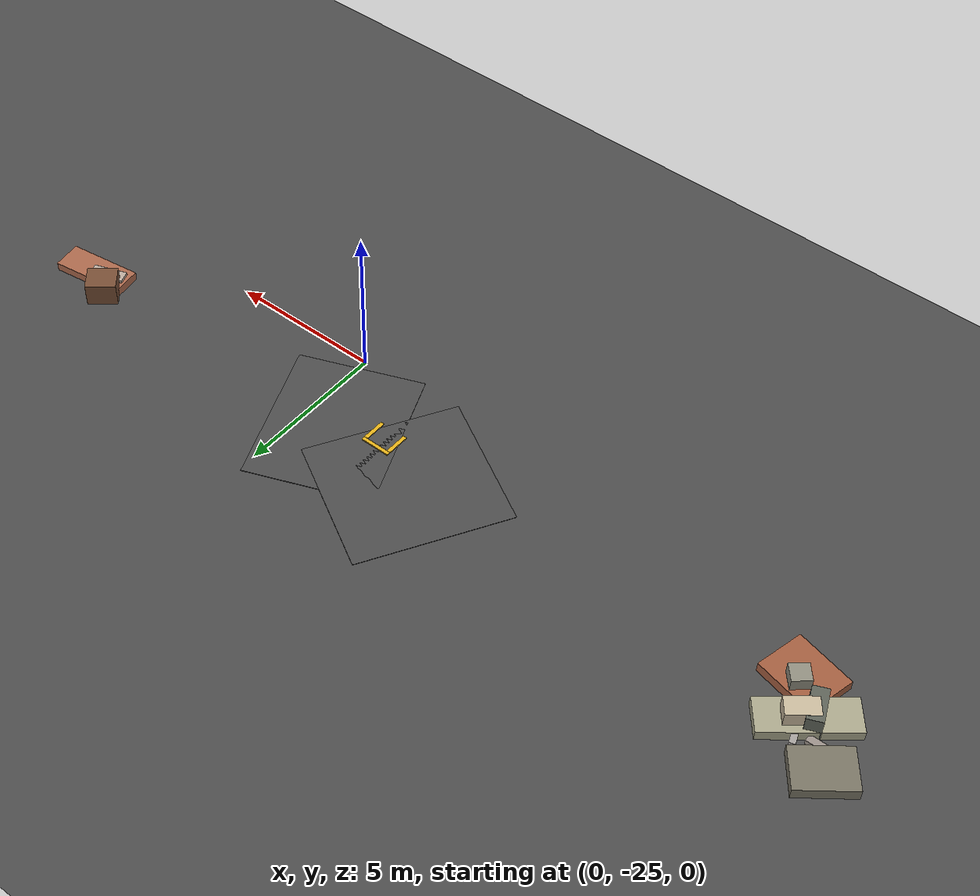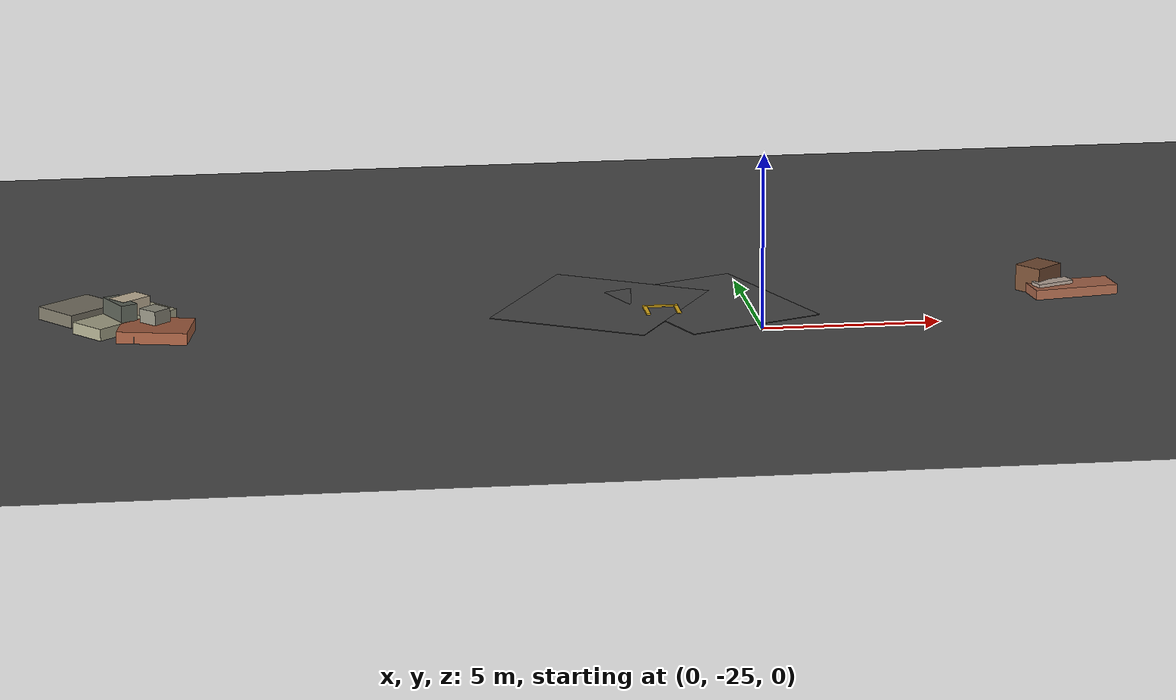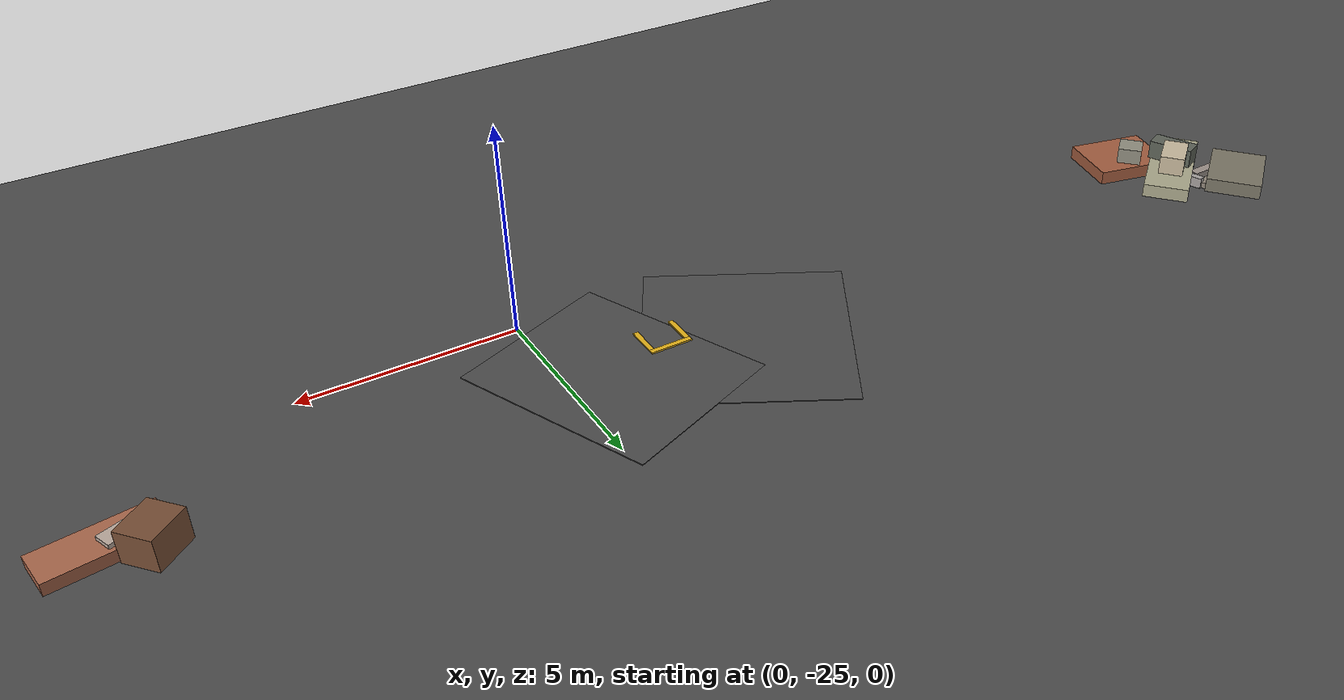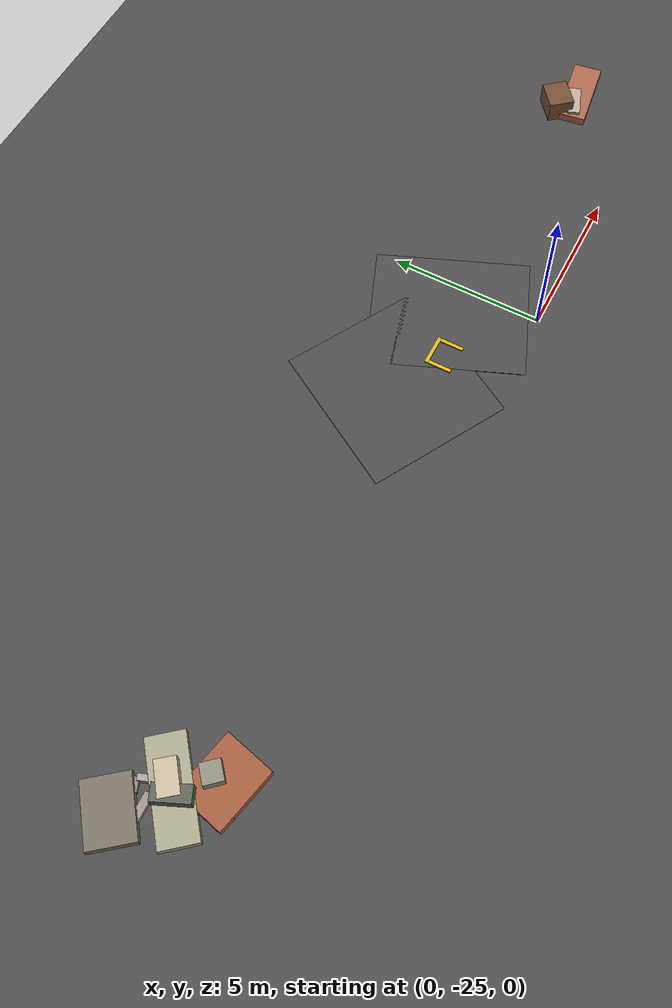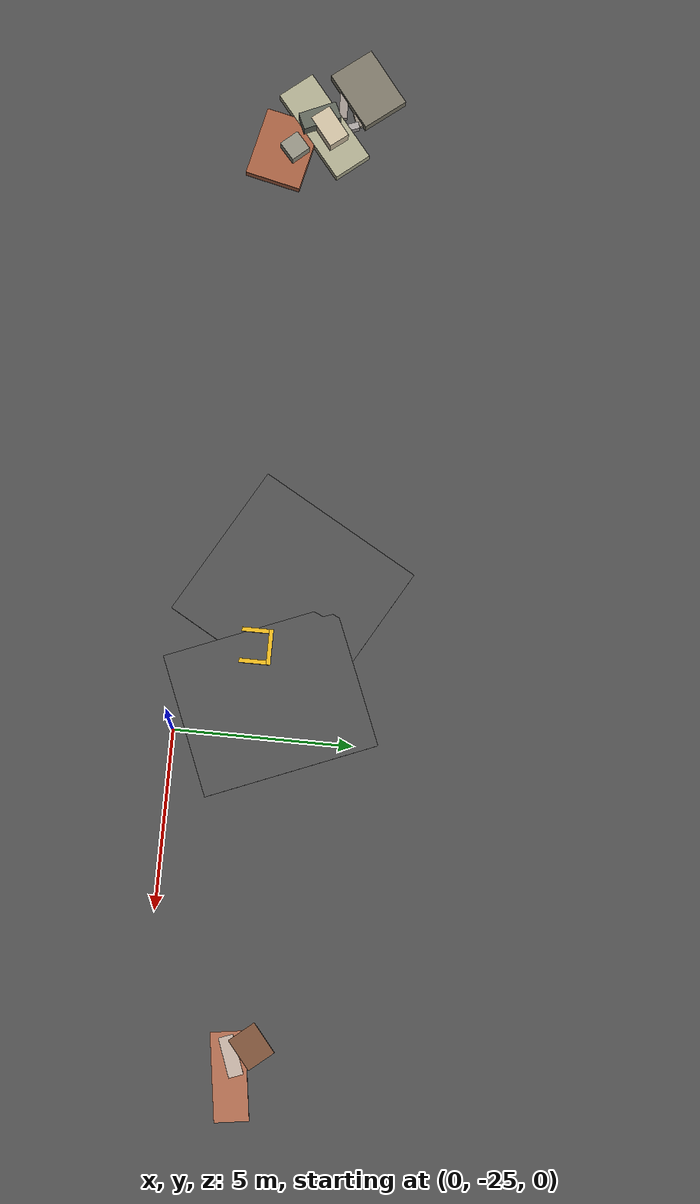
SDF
<sdf version="1.6">
 <world name="navitas_arena">
  <model name="ground_plane">
   <static>true</static>
   <link name="link">
    <collision name="collision">
     <geometry><plane><normal>0 0 1</normal><size>400 400</size></plane></geometry>
     <surface><friction><ode><mu>0.800</mu><mu2>0.800</mu2></ode></friction></surface>
    </collision>
    <visual name="visual">
     <cast_shadows>false</cast_shadows>
     <geometry><plane><normal>0 0 1</normal><size>400 400</size></plane></geometry>
     <material>
      <specular>0.04 0.04 0.04 1</specular>
      <script>
       <uri>file://media/materials/scripts/navitas_asphalt.material</uri>
       <name>Navitas/RealArenaAsphalt</name>
      </script>
     </material>
    </visual>
   </link>
  </model>
  <model name="road_orta_1_0">
   <static>true</static>
   <pose>-4.169 -22.070 0.040 0 0 2.623</pose>
   <link name="link">
    <collision name="col"><geometry><box><size>4.656 5.000 0.020</size></box></geometry></collision>
    <visual name="vis">
     <geometry><box><size>4.656 5.000 0.020</size></box></geometry>
     <material>
      <specular>0.04 0.04 0.04 1</specular>
      <script>
       <uri>file://media/materials/scripts/navitas_asphalt.material</uri>
       <name>Navitas/RealArenaAsphalt</name>
      </script>
     </material>
    </visual>
   </link>
  </model>
  <model name="road_orta_3_0">
   <static>true</static>
   <pose>-1.054 -22.399 0.040 0 0 0.385</pose>
   <link name="link">
    <collision name="col"><geometry><box><size>4.101 5.000 0.020</size></box></geometry></collision>
    <visual name="vis">
     <geometry><box><size>4.101 5.000 0.020</size></box></geometry>
     <material>
      <specular>0.04 0.04 0.04 1</specular>
      <script>
       <uri>file://media/materials/scripts/navitas_asphalt.material</uri>
       <name>Navitas/RealArenaAsphalt</name>
      </script>
     </material>
    </visual>
   </link>
  </model>
  <model name="deb_orta_82">
   <static>true</static>
   <pose>9.050 -22.396 0.000 0 0 0</pose>
   <link name="link">
    <collision name="col_0">
     <pose>-0.317 -0.118 0.189 0.000 0.000 0.358</pose>
     <geometry><box><size>1.117 0.415 0.378</size></box></geometry>
    </collision>
    <visual name="vis_0">
     <pose>-0.317 -0.118 0.189 0.000 0.000 0.358</pose>
     <geometry><box><size>1.117 0.415 0.378</size></box></geometry>
     <material>
      <ambient>0.69 0.62 0.57 1</ambient>
      <diffuse>0.74 0.67 0.62 1</diffuse>
      <specular>0.05 0.05 0.045 1</specular>
     </material>
    </visual>
    <collision name="col_1">
     <pose>-0.623 0.414 0.374 0.000 0.000 -0.878</pose>
     <geometry><box><size>0.850 0.978 0.747</size></box></geometry>
    </collision>
    <visual name="vis_1">
     <pose>-0.623 0.414 0.374 0.000 0.000 -0.878</pose>
     <geometry><box><size>0.850 0.978 0.747</size></box></geometry>
     <material>
      <ambient>0.44 0.29 0.19 1</ambient>
      <diffuse>0.47 0.31 0.21 1</diffuse>
      <specular>0.05 0.05 0.045 1</specular>
     </material>
    </visual>
    <collision name="col_2">
     <pose>-0.052 -0.086 0.062 0.000 0.000 0.017</pose>
     <geometry><box><size>0.270 0.434 0.124</size></box></geometry>
    </collision>
    <visual name="vis_2">
     <pose>-0.052 -0.086 0.062 0.000 0.000 0.017</pose>
     <geometry><box><size>0.270 0.434 0.124</size></box></geometry>
     <material>
      <ambient>0.63 0.36 0.28 1</ambient>
      <diffuse>0.69 0.39 0.30 1</diffuse>
      <specular>0.05 0.05 0.045 1</specular>
     </material>
    </visual>
    <collision name="col_3">
     <pose>0.230 -0.101 0.140 0.000 0.000 0.144</pose>
     <geometry><box><size>2.427 0.956 0.279</size></box></geometry>
    </collision>
    <visual name="vis_3">
     <pose>0.230 -0.101 0.140 0.000 0.000 0.144</pose>
     <geometry><box><size>2.427 0.956 0.279</size></box></geometry>
     <material>
      <ambient>0.62 0.38 0.28 1</ambient>
      <diffuse>0.67 0.41 0.30 1</diffuse>
      <specular>0.05 0.05 0.045 1</specular>
     </material>
    </visual>
   </link>
  </model>
  <model name="deb_orta_173">
   <static>true</static>
   <pose>-17.316 -23.036 0.000 0 0 0</pose>
   <link name="link">
    <collision name="col_0">
     <pose>-0.248 -0.627 0.097 0.000 0.000 -1.308</pose>
     <geometry><box><size>1.161 0.126 0.194</size></box></geometry>
    </collision>
    <visual name="vis_0">
     <pose>-0.248 -0.627 0.097 0.000 0.000 -1.308</pose>
     <geometry><box><size>1.161 0.126 0.194</size></box></geometry>
     <material>
      <ambient>0.70 0.65 0.59 1</ambient>
      <diffuse>0.76 0.70 0.63 1</diffuse>
      <specular>0.05 0.05 0.045 1</specular>
     </material>
    </visual>
    <collision name="col_1">
     <pose>-0.281 0.566 0.169 0.000 0.000 0.686</pose>
     <geometry><box><size>2.909 1.127 0.338</size></box></geometry>
    </collision>
    <visual name="vis_1">
     <pose>-0.281 0.566 0.169 0.000 0.000 0.686</pose>
     <geometry><box><size>2.909 1.127 0.338</size></box></geometry>
     <material>
      <ambient>0.62 0.61 0.51 1</ambient>
      <diffuse>0.67 0.66 0.55 1</diffuse>
      <specular>0.05 0.05 0.045 1</specular>
     </material>
    </visual>
    <collision name="col_2">
     <pose>0.054 0.742 0.159 0.000 0.000 -0.712</pose>
     <geometry><box><size>0.217 0.296 0.318</size></box></geometry>
    </collision>
    <visual name="vis_2">
     <pose>0.054 0.742 0.159 0.000 0.000 -0.712</pose>
     <geometry><box><size>0.217 0.296 0.318</size></box></geometry>
     <material>
      <ambient>0.38 0.38 0.35 1</ambient>
      <diffuse>0.41 0.41 0.38 1</diffuse>
      <specular>0.05 0.05 0.045 1</specular>
     </material>
    </visual>
    <collision name="col_3">
     <pose>-0.418 0.420 0.406 0.000 0.000 -1.157</pose>
     <geometry><box><size>1.106 0.493 0.812</size></box></geometry>
    </collision>
    <visual name="vis_3">
     <pose>-0.418 0.420 0.406 0.000 0.000 -1.157</pose>
     <geometry><box><size>1.106 0.493 0.812</size></box></geometry>
     <material>
      <ambient>0.35 0.36 0.32 1</ambient>
      <diffuse>0.37 0.39 0.35 1</diffuse>
      <specular>0.05 0.05 0.045 1</specular>
     </material>
    </visual>
    <collision name="col_4">
     <pose>-0.133 0.729 0.407 0.000 0.000 -0.904</pose>
     <geometry><box><size>0.613 0.999 0.815</size></box></geometry>
    </collision>
    <visual name="vis_4">
     <pose>-0.133 0.729 0.407 0.000 0.000 -0.904</pose>
     <geometry><box><size>0.613 0.999 0.815</size></box></geometry>
     <material>
      <ambient>0.73 0.68 0.57 1</ambient>
      <diffuse>0.79 0.73 0.62 1</diffuse>
      <specular>0.05 0.05 0.045 1</specular>
     </material>
    </visual>
    <collision name="col_5">
     <pose>0.506 -0.531 0.168 0.000 0.000 -0.225</pose>
     <geometry><box><size>1.976 1.593 0.335</size></box></geometry>
    </collision>
    <visual name="vis_5">
     <pose>0.506 -0.531 0.168 0.000 0.000 -0.225</pose>
     <geometry><box><size>1.976 1.593 0.335</size></box></geometry>
     <material>
      <ambient>0.59 0.34 0.23 1</ambient>
      <diffuse>0.64 0.37 0.25 1</diffuse>
      <specular>0.05 0.05 0.045 1</specular>
     </material>
    </visual>
    <collision name="col_6">
     <pose>0.507 -0.201 0.365 0.000 0.000 -0.849</pose>
     <geometry><box><size>0.591 0.597 0.730</size></box></geometry>
    </collision>
    <visual name="vis_6">
     <pose>0.507 -0.201 0.365 0.000 0.000 -0.849</pose>
     <geometry><box><size>0.591 0.597 0.730</size></box></geometry>
     <material>
      <ambient>0.53 0.51 0.46 1</ambient>
      <diffuse>0.57 0.56 0.50 1</diffuse>
      <specular>0.05 0.05 0.045 1</specular>
     </material>
    </visual>
   </link>
  </model>
  <model name="deb_orta_219">
   <static>true</static>
   <pose>-18.336 -22.241 0.000 0 0 0</pose>
   <link name="link">
    <collision name="col_0">
     <pose>0.407 0.737 0.077 0.000 0.000 1.942</pose>
     <geometry><box><size>0.206 0.415 0.154</size></box></geometry>
    </collision>
    <visual name="vis_0">
     <pose>0.407 0.737 0.077 0.000 0.000 1.942</pose>
     <geometry><box><size>0.206 0.415 0.154</size></box></geometry>
     <material>
      <ambient>0.53 0.49 0.44 1</ambient>
      <diffuse>0.57 0.53 0.48 1</diffuse>
      <specular>0.05 0.05 0.045 1</specular>
     </material>
    </visual>
    <collision name="col_1">
     <pose>-0.159 0.259 0.088 0.000 0.000 3.163</pose>
     <geometry><box><size>1.138 0.238 0.175</size></box></geometry>
    </collision>
    <visual name="vis_1">
     <pose>-0.159 0.259 0.088 0.000 0.000 3.163</pose>
     <geometry><box><size>1.138 0.238 0.175</size></box></geometry>
     <material>
      <ambient>0.56 0.52 0.50 1</ambient>
      <diffuse>0.61 0.57 0.54 1</diffuse>
      <specular>0.05 0.05 0.045 1</specular>
     </material>
    </visual>
    <collision name="col_2">
     <pose>-0.461 0.920 0.182 0.000 0.000 3.809</pose>
     <geometry><box><size>1.809 1.371 0.365</size></box></geometry>
    </collision>
    <visual name="vis_2">
     <pose>-0.461 0.920 0.182 0.000 0.000 3.809</pose>
     <geometry><box><size>1.809 1.371 0.365</size></box></geometry>
     <material>
      <ambient>0.44 0.43 0.37 1</ambient>
      <diffuse>0.48 0.46 0.40 1</diffuse>
      <specular>0.05 0.05 0.045 1</specular>
     </material>
    </visual>
    <collision name="col_3">
     <pose>0.949 -0.199 0.135 0.000 0.000 1.928</pose>
     <geometry><box><size>2.028 0.189 0.270</size></box></geometry>
    </collision>
    <visual name="vis_3">
     <pose>0.949 -0.199 0.135 0.000 0.000 1.928</pose>
     <geometry><box><size>2.028 0.189 0.270</size></box></geometry>
     <material>
      <ambient>0.60 0.59 0.57 1</ambient>
      <diffuse>0.65 0.63 0.62 1</diffuse>
      <specular>0.05 0.05 0.045 1</specular>
     </material>
    </visual>
   </link>
  </model>
  <model name="kb_orta_N">
   <static>true</static>
   <pose>-2.538 -22.560 0.070 0 0 0.000</pose>
   <link name="link">
    <collision name="col"><geometry><box><size>1.000 0.120 0.040</size></box></geometry></collision>
    <visual name="vis">
     <geometry><box><size>1.000 0.120 0.040</size></box></geometry>
     <material>
      <ambient>0.90 0.70 0.10 1</ambient>
      <diffuse>0.90 0.70 0.10 1</diffuse>
      <specular>0.04 0.04 0.04 1</specular>
     </material>
    </visual>
   </link>
  </model>
  <model name="kb_orta_W">
   <static>true</static>
   <pose>-2.978 -23.000 0.070 0 0 0.000</pose>
   <link name="link">
    <collision name="col"><geometry><box><size>0.120 0.760 0.040</size></box></geometry></collision>
    <visual name="vis">
     <geometry><box><size>0.120 0.760 0.040</size></box></geometry>
     <material>
      <ambient>0.90 0.70 0.10 1</ambient>
      <diffuse>0.90 0.70 0.10 1</diffuse>
      <specular>0.04 0.04 0.04 1</specular>
     </material>
    </visual>
   </link>
  </model>
  <model name="kb_orta_E">
   <static>true</static>
   <pose>-2.098 -23.000 0.070 0 0 0.000</pose>
   <link name="link">
    <collision name="col"><geometry><box><size>0.120 0.760 0.040</size></box></geometry></collision>
    <visual name="vis">
     <geometry><box><size>0.120 0.760 0.040</size></box></geometry>
     <material>
      <ambient>0.90 0.70 0.10 1</ambient>
      <diffuse>0.90 0.70 0.10 1</diffuse>
      <specular>0.04 0.04 0.04 1</specular>
     </material>
    </visual>
   </link>
  </model>
 </world>
</sdf>
